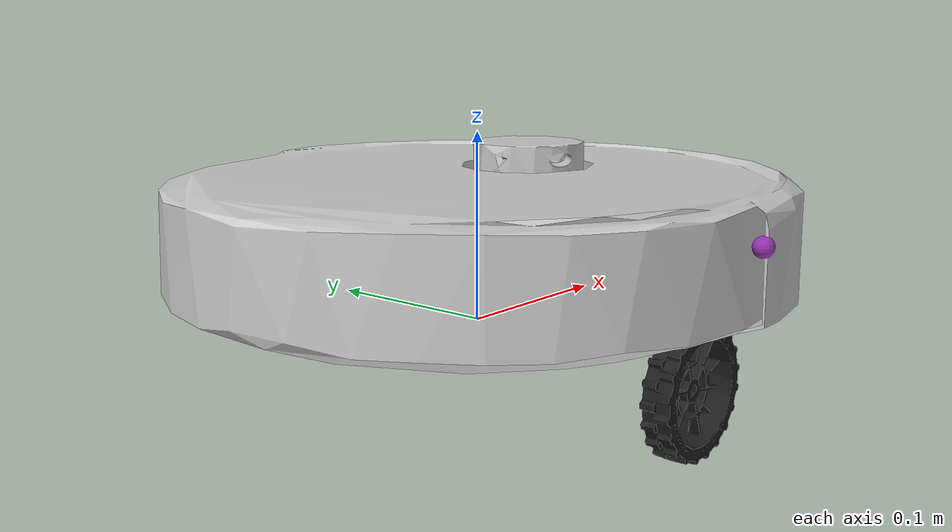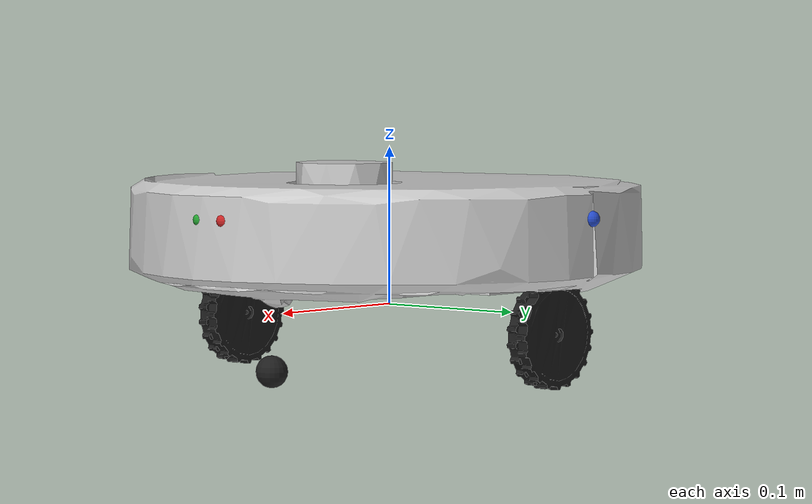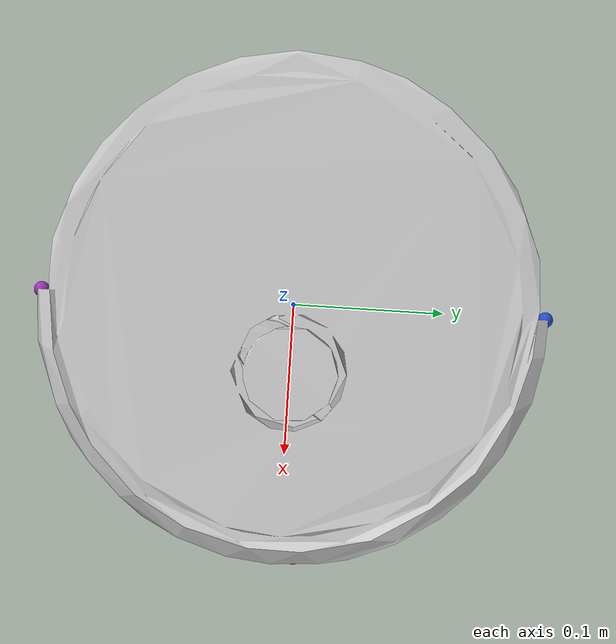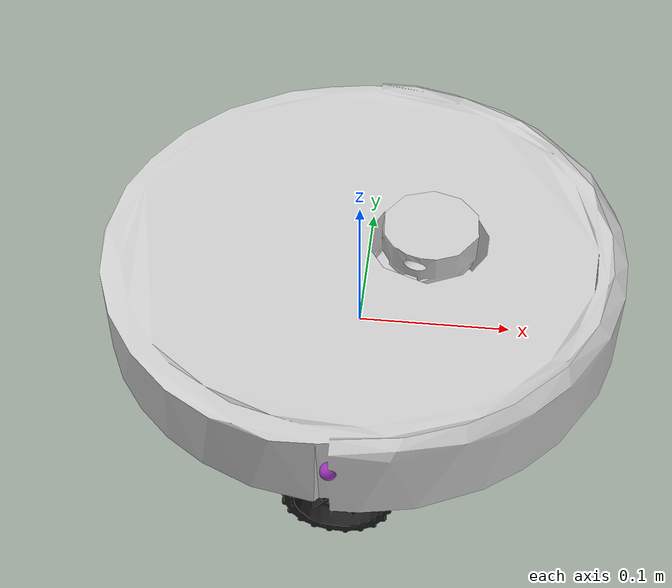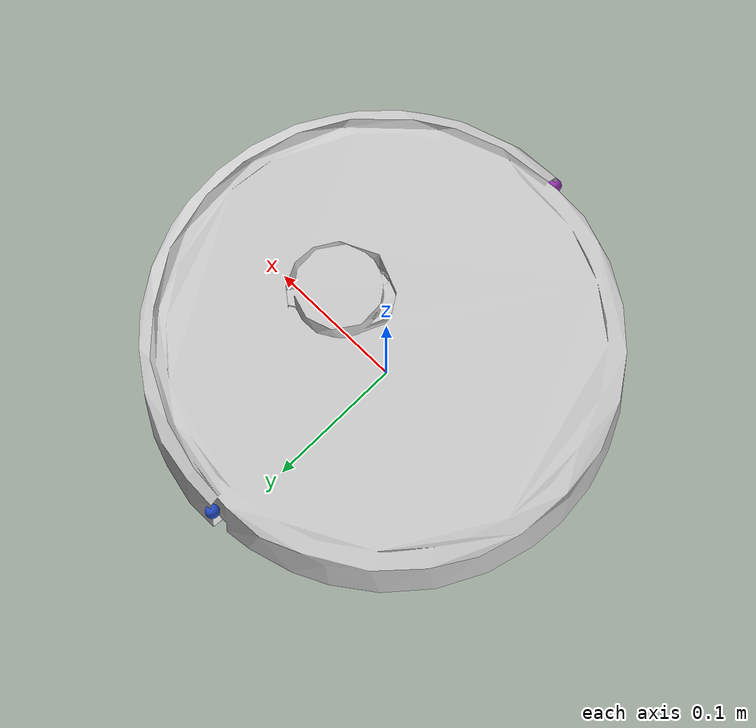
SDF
<sdf version='1.6'>
  <model name='rvc'>
    <link name='base_link'>
      <pose frame=''>0 0 0 0 -0 0</pose>
      <inertial>
        <pose frame=''>0.015 0 0.056667 0 -0 0</pose>
        <mass>0.6</mass>
        <inertia>
          <ixx>0.00309438</ixx>
          <ixy>0</ixy>
          <ixz>-0.00021</ixz>
          <iyy>0.00336438</iyy>
          <iyz>0</iyz>
          <izz>0.0057958</izz>
        </inertia>
      </inertial>
      <collision name='base_link_fixed_joint_lump__boby_collision_collision'>
        <pose frame=''>0 0 0.045 0 -0 0</pose>
        <geometry>
          <cylinder>
            <length>0.07</length>
            <radius>0.16495</radius>
          </cylinder>
        </geometry>
      </collision>
      <collision name='base_link_fixed_joint_lump__collision_collision_1'>
        <pose frame=''>0.045 0 0.08 0 -0 0</pose>
        <geometry>
          <cylinder>
            <length>0.017</length>
            <radius>0.029</radius>
          </cylinder>
        </geometry>
      </collision>
      <visual name='base_link_fixed_joint_lump__body_visual'>
        <pose frame=''>0 0 0.045 0 -0 0</pose>
        <geometry>
          <mesh>
            <scale>1 1 1</scale>
            <uri>model://sweeper_description/meshes/RobotBody.dae</uri>
          </mesh>
        </geometry>
      </visual>
      <visual name='base_link_fixed_joint_lump__imu_link_visual_1'>
        <pose frame=''>0 0 0.045 0 -0 0</pose>
        <geometry>
          <cylinder>
            <length>0.001</length>
            <radius>0.001</radius>
          </cylinder>
        </geometry>
        <material>
          <script>
            <uri>__default__</uri>
            <name>__default__</name>
          </script>
        </material>
      </visual>
      <visual name='base_link_fixed_joint_lump__ir_recevier_fl_visual_2'>
        <pose frame=''>0.161659 0.009711 0.06 0 -0 0.06</pose>
        <geometry>
          <sphere>
            <radius>0.005</radius>
          </sphere>
        </geometry>
        <material>
          <script>
            <name>Gazebo/Red</name>
            <uri>file://media/materials/scripts/gazebo.material</uri>
          </script>
        </material>
      </visual>
      <visual name='base_link_fixed_joint_lump__ir_recevier_fr_visual_3'>
        <pose frame=''>0.161659 -0.009711 0.06 0 0 -0.06</pose>
        <geometry>
          <sphere>
            <radius>0.005</radius>
          </sphere>
        </geometry>
        <material>
          <script>
            <name>Gazebo/Green</name>
            <uri>file://media/materials/scripts/gazebo.material</uri>
          </script>
        </material>
      </visual>
      <visual name='base_link_fixed_joint_lump__ir_recevier_l_visual_4'>
        <pose frame=''>0 0.16195 0.06 0 -0 1.57079</pose>
        <geometry>
          <sphere>
            <radius>0.005</radius>
          </sphere>
        </geometry>
        <material>
          <script>
            <name>Gazebo/Blue</name>
            <uri>file://media/materials/scripts/gazebo.material</uri>
          </script>
        </material>
      </visual>
      <visual name='base_link_fixed_joint_lump__ir_recevier_r_visual_5'>
        <pose frame=''>0 -0.16195 0.06 0 0 -1.57079</pose>
        <geometry>
          <sphere>
            <radius>0.005</radius>
          </sphere>
        </geometry>
        <material>
          <script>
            <name>Gazebo/Purple</name>
            <uri>file://media/materials/scripts/gazebo.material</uri>
          </script>
        </material>
      </visual>
      <visual name='base_link_fixed_joint_lump__laser_visual_visual_6'>
        <pose frame=''>0.045 0 0.08 0 -0 0</pose>
        <geometry>
          <mesh>
            <scale>1 1 1</scale>
            <uri>model://sweeper_description/meshes/RobotLidar.dae</uri>
          </mesh>
        </geometry>
      </visual>
      <velocity_decay/>
      <sensor name='main_bumper' type='contact'>
        <contact>
          <collision>base_link_fixed_joint_lump__boby_collision_collision</collision>
          <topic>__default_topic__</topic>
        </contact>
        <plugin name='gazebo_ros_bumper_controller' filename='libgazebo_ros_bumper.so'>
          <selfCollide>true</selfCollide>
          <alwaysOn>true</alwaysOn>
          <updateRate>20.0</updateRate>
          <bumperTopicName>/bumper</bumperTopicName>
          <frameName>base_link</frameName>
        </plugin>
      </sensor>
      <velocity_decay/>
      <sensor name='imu_sensor' type='imu'>
        <always_on>1</always_on>
        <update_rate>100</update_rate>
        <visualize>1</visualize>
        <topic>__default_topic__</topic>
        <plugin name='imu_plugin' filename='libgazebo_ros_imu_sensor.so'>
          <topicName>/imu</topicName>
          <bodyName>imu_link</bodyName>
          <updateRateHZ>50.0</updateRateHZ>
          <gaussianNoise>0.0</gaussianNoise>
          <xyzOffset>0 0 0</xyzOffset>
          <rpyOffset>0 0 0</rpyOffset>
          <frameName>imu_link</frameName>
          <initialOrientationAsReference>false</initialOrientationAsReference>
        </plugin>
        <pose frame=''>0 0 0.045 0 -0 0</pose>
      </sensor>
      <velocity_decay/>
      <sensor name='ir_front_sensor' type='ray'>
        <visualize>1</visualize>
        <update_rate>20</update_rate>
        <ray>
          <scan>
            <horizontal>
              <samples>10</samples>
              <resolution>1</resolution>
              <min_angle>-0.0872664</min_angle>
              <max_angle>0.0872664</max_angle>
            </horizontal>
          </scan>
          <range>
            <min>0.01</min>
            <max>0.26</max>
            <resolution>0.01</resolution>
          </range>
        </ray>
        <plugin name='gazebo_ros_ir_front_controller' filename='libgazebo_ros_range.so'>
          <gaussianNoise>0.005</gaussianNoise>
          <alwaysOn>true</alwaysOn>
          <updateRate>20</updateRate>
          <topicName>/ir/front</topicName>
          <frameName>base_link</frameName>
          <radiation>ir</radiation>
          <fov>0.174532777778</fov>
        </plugin>
        <pose frame=''>0.16495 0 0.045 0 -0 0</pose>
      </sensor>
      <velocity_decay/>
      <sensor name='ir_left_front_sensor' type='ray'>
        <visualize>1</visualize>
        <update_rate>20</update_rate>
        <ray>
          <scan>
            <horizontal>
              <samples>10</samples>
              <resolution>1</resolution>
              <min_angle>-0.0872664</min_angle>
              <max_angle>0.0872664</max_angle>
            </horizontal>
          </scan>
          <range>
            <min>0.01</min>
            <max>0.26</max>
            <resolution>0.01</resolution>
          </range>
        </ray>
        <plugin name='gazebo_ros_ir_left_front_controller' filename='libgazebo_ros_range.so'>
          <gaussianNoise>0.005</gaussianNoise>
          <alwaysOn>true</alwaysOn>
          <updateRate>20</updateRate>
          <topicName>/ir/left_front</topicName>
          <frameName>base_link</frameName>
          <radiation>ir</radiation>
          <fov>0.174532777778</fov>
        </plugin>
        <pose frame=''>0.116637 0.116637 0.045 0 -0 0.785397</pose>
      </sensor>
      <velocity_decay/>
      <sensor name='ir_left_sensor' type='ray'>
        <visualize>1</visualize>
        <update_rate>20</update_rate>
        <ray>
          <scan>
            <horizontal>
              <samples>10</samples>
              <resolution>1</resolution>
              <min_angle>-0.0872664</min_angle>
              <max_angle>0.0872664</max_angle>
            </horizontal>
          </scan>
          <range>
            <min>0.01</min>
            <max>0.26</max>
            <resolution>0.01</resolution>
          </range>
        </ray>
        <plugin name='gazebo_ros_ir_left_controller' filename='libgazebo_ros_range.so'>
          <gaussianNoise>0.005</gaussianNoise>
          <alwaysOn>true</alwaysOn>
          <updateRate>20</updateRate>
          <topicName>/ir/left</topicName>
          <frameName>base_link</frameName>
          <radiation>ir</radiation>
          <fov>0.174532777778</fov>
        </plugin>
        <pose frame=''>0 0.16495 0.045 0 -0 1.57079</pose>
      </sensor>
      <velocity_decay/>
      <velocity_decay/>
      <velocity_decay/>
      <velocity_decay/>
      <velocity_decay/>
      <sensor name='ir_right_front_sensor' type='ray'>
        <visualize>1</visualize>
        <update_rate>20</update_rate>
        <ray>
          <scan>
            <horizontal>
              <samples>10</samples>
              <resolution>1</resolution>
              <min_angle>-0.0872664</min_angle>
              <max_angle>0.0872664</max_angle>
            </horizontal>
          </scan>
          <range>
            <min>0.01</min>
            <max>0.26</max>
            <resolution>0.01</resolution>
          </range>
        </ray>
        <plugin name='gazebo_ros_ir_right_front_controller' filename='libgazebo_ros_range.so'>
          <gaussianNoise>0.005</gaussianNoise>
          <alwaysOn>true</alwaysOn>
          <updateRate>20</updateRate>
          <topicName>/ir/right_front</topicName>
          <frameName>base_link</frameName>
          <radiation>ir</radiation>
          <fov>0.174532777778</fov>
        </plugin>
        <pose frame=''>0.116637 -0.116637 0.045 0 0 -0.785397</pose>
      </sensor>
      <gravity>1</gravity>
      <velocity_decay/>
      <sensor name='ir_right_sensor' type='ray'>
        <visualize>1</visualize>
        <update_rate>20</update_rate>
        <ray>
          <scan>
            <horizontal>
              <samples>10</samples>
              <resolution>1</resolution>
              <min_angle>-0.0872664</min_angle>
              <max_angle>0.0872664</max_angle>
            </horizontal>
          </scan>
          <range>
            <min>0.01</min>
            <max>0.26</max>
            <resolution>0.01</resolution>
          </range>
        </ray>
        <plugin name='gazebo_ros_ir_right_controller' filename='libgazebo_ros_range.so'>
          <gaussianNoise>0.005</gaussianNoise>
          <alwaysOn>true</alwaysOn>
          <updateRate>20</updateRate>
          <topicName>/ir/right</topicName>
          <frameName>base_link</frameName>
          <radiation>ir</radiation>
          <fov>0.174532777778</fov>
        </plugin>
        <pose frame=''>0 -0.16495 0.045 0 0 -1.57079</pose>
      </sensor>
      <gravity>1</gravity>
      <velocity_decay/>
      <sensor name='eai_lidar' type='ray'>
        <visualize>0</visualize>
        <update_rate>5</update_rate>
        <ray>
          <scan>
            <horizontal>
              <samples>360</samples>
              <resolution>1</resolution>
              <min_angle>0</min_angle>
              <max_angle>6.28318</max_angle>
            </horizontal>
          </scan>
          <range>
            <min>0.1</min>
            <max>8</max>
            <resolution>0.01</resolution>
          </range>
          <noise>
            <type>gaussian</type>
            <mean>0</mean>
            <stddev>0.01</stddev>
          </noise>
        </ray>
        <plugin name='gazebo_ros_lidar_controller' filename='libgazebo_ros_laser.so'>
          <topicName>/scan</topicName>
          <frameName>lidar_link</frameName>
        </plugin>
        <pose frame=''>0.045 0 0.085 0 -0 0</pose>
      </sensor>
    </link>
    <link name='front_omni'>
      <pose frame=''>0.11 0 -0.035 0 -0 0</pose>
      <inertial>
        <pose frame=''>0 0 0 0 -0 0</pose>
        <mass>0.1</mass>
        <inertia>
          <ixx>4e-06</ixx>
          <ixy>0</ixy>
          <ixz>0</ixz>
          <iyy>4e-06</iyy>
          <iyz>0</iyz>
          <izz>4e-06</izz>
        </inertia>
      </inertial>
      <collision name='front_omniwheel_collision'>
        <pose frame=''>0 0 0 0 -0 0</pose>
        <geometry>
          <sphere>
            <radius>0.01</radius>
          </sphere>
        </geometry>
        <surface>
          <contact>
            <ode>
              <kp>1e+07</kp>
              <kd>10</kd>
              <max_vel>1</max_vel>
              <min_depth>0</min_depth>
            </ode>
          </contact>
          <friction>
            <ode>
              <mu>0</mu>
              <mu2>0</mu2>
              <fdir1>1 0 0</fdir1>
            </ode>
          </friction>
        </surface>
      </collision>
      <visual name='front_omni_visual'>
        <pose frame=''>0 0 0 0 -0 0</pose>
        <geometry>
          <sphere>
            <radius>0.01</radius>
          </sphere>
        </geometry>
        <material>
          <script>
            <name>Gazebo/Black</name>
            <uri>file://media/materials/scripts/gazebo.material</uri>
          </script>
        </material>
      </visual>
      <gravity>1</gravity>
      <velocity_decay/>
    </link>
    <joint name='front_omni_to_base' type='revolute'>
      <child>front_omni</child>
      <parent>base_link</parent>
      <axis>
        <xyz>0 1 0</xyz>
        <limit>
          <lower>-1e+16</lower>
          <upper>1e+16</upper>
        </limit>
        <dynamics>
          <spring_reference>0</spring_reference>
          <spring_stiffness>0</spring_stiffness>
        </dynamics>
        <use_parent_model_frame>1</use_parent_model_frame>
      </axis>
    </joint>
    <link name='left_wheel'>
      <pose frame=''>0 0.13 -0.012 0 -0 0</pose>
      <inertial>
        <pose frame=''>0 0 0 0 -0 0</pose>
        <mass>0.2</mass>
        <inertia>
          <ixx>5.87167e-05</ixx>
          <ixy>0</ixy>
          <ixz>0</ixz>
          <iyy>5.87167e-05</iyy>
          <iyz>0</iyz>
          <izz>0.0001089</izz>
        </inertia>
      </inertial>
      <collision name='left_wheel_collision_collision'>
        <pose frame=''>0 0 0 0 1.5707 1.5707</pose>
        <geometry>
          <cylinder>
            <length>0.016</length>
            <radius>0.033</radius>
          </cylinder>
        </geometry>
        <surface>
          <contact>
            <ode>
              <kp>1e+07</kp>
              <kd>10</kd>
              <max_vel>1</max_vel>
              <min_depth>0</min_depth>
            </ode>
          </contact>
          <friction>
            <ode>
              <mu>200</mu>
              <mu2>100</mu2>
              <fdir1>1 0 0</fdir1>
            </ode>
          </friction>
        </surface>
      </collision>
      <visual name='left_wheel_visual'>
        <pose frame=''>0 0 0 0 1.5707 1.5707</pose>
        <geometry>
          <mesh>
            <scale>1 1 1</scale>
            <uri>model://sweeper_description/meshes/RobotWheel.dae</uri>
          </mesh>
        </geometry>
        <material>
          <script>
            <name>Gazebo/Black</name>
            <uri>file://media/materials/scripts/gazebo.material</uri>
          </script>
        </material>
      </visual>
      <gravity>1</gravity>
      <velocity_decay/>
    </link>
    <joint name='left_wheel_joint' type='revolute'>
      <child>left_wheel</child>
      <parent>base_link</parent>
      <axis>
        <xyz>0 1 0</xyz>
        <limit>
          <lower>-1e+16</lower>
          <upper>1e+16</upper>
        </limit>
        <dynamics>
          <spring_reference>0</spring_reference>
          <spring_stiffness>0</spring_stiffness>
        </dynamics>
        <use_parent_model_frame>1</use_parent_model_frame>
      </axis>
    </joint>
    <link name='right_wheel'>
      <pose frame=''>0 -0.13 -0.012 0 -0 0</pose>
      <inertial>
        <pose frame=''>0 0 0 0 -0 0</pose>
        <mass>0.2</mass>
        <inertia>
          <ixx>5.87167e-05</ixx>
          <ixy>0</ixy>
          <ixz>0</ixz>
          <iyy>5.87167e-05</iyy>
          <iyz>0</iyz>
          <izz>0.0001089</izz>
        </inertia>
      </inertial>
      <collision name='right_wheel_collision_collision'>
        <pose frame=''>0 0 0 0 1.5707 1.5707</pose>
        <geometry>
          <cylinder>
            <length>0.016</length>
            <radius>0.033</radius>
          </cylinder>
        </geometry>
        <surface>
          <contact>
            <ode>
              <kp>1e+07</kp>
              <kd>10</kd>
              <max_vel>1</max_vel>
              <min_depth>0</min_depth>
            </ode>
          </contact>
          <friction>
            <ode>
              <mu>200</mu>
              <mu2>100</mu2>
              <fdir1>1 0 0</fdir1>
            </ode>
          </friction>
        </surface>
      </collision>
      <visual name='right_wheel_visual'>
        <pose frame=''>0 0 0 0 1.5707 1.5707</pose>
        <geometry>
          <mesh>
            <scale>1 1 1</scale>
            <uri>model://sweeper_description/meshes/RobotWheel.dae</uri>
          </mesh>
        </geometry>
        <material>
          <script>
            <name>Gazebo/Black</name>
            <uri>file://media/materials/scripts/gazebo.material</uri>
          </script>
        </material>
      </visual>
      <gravity>1</gravity>
      <velocity_decay/>
    </link>
    <joint name='right_wheel_joint' type='revolute'>
      <child>right_wheel</child>
      <parent>base_link</parent>
      <axis>
        <xyz>0 1 0</xyz>
        <limit>
          <lower>-1e+16</lower>
          <upper>1e+16</upper>
        </limit>
        <dynamics>
          <spring_reference>0</spring_reference>
          <spring_stiffness>0</spring_stiffness>
        </dynamics>
        <use_parent_model_frame>1</use_parent_model_frame>
      </axis>
    </joint>
    <static>0</static>
    <plugin name='gazebo_ros_control' filename='libgazebo_ros_control.so'>
      <robotNamespace>/</robotNamespace>
      <legacyModeNS>true</legacyModeNS>
    </plugin>
  </model>
</sdf>
